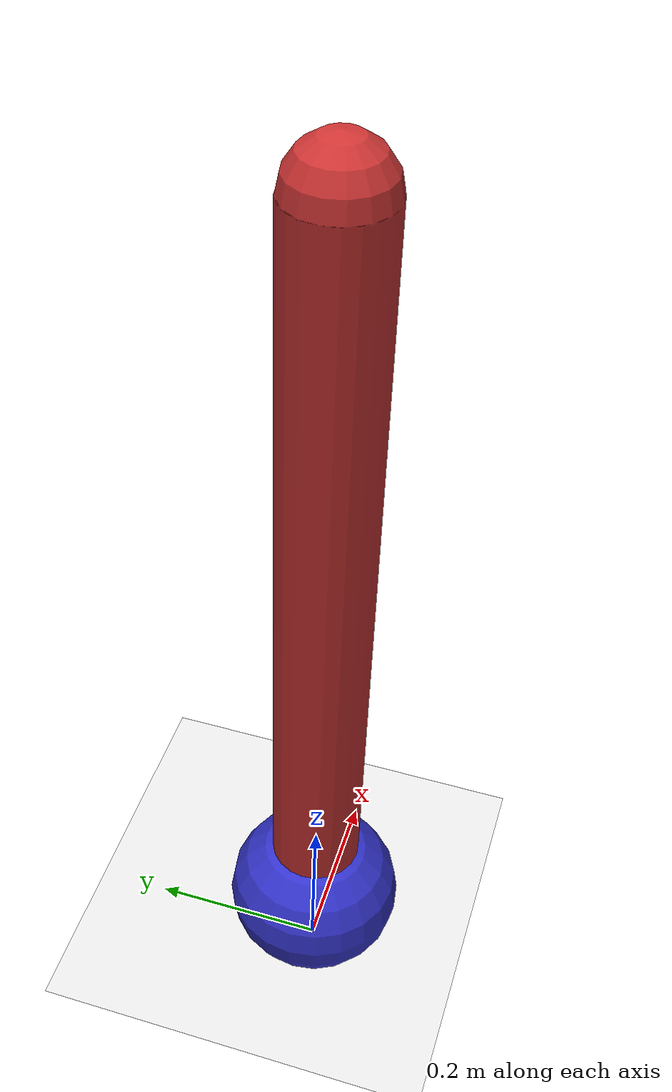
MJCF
<mujoco model="pendulum">
  <worldbody>
    <light pos="0 0 2"/>
    <geom name="floor" type="plane" size="1 1 0.1" rgba=".9 .9 .9 1"/>
    <body name="pole" pos="0 0 1">
      <joint name="hinge" type="hinge" axis="0 1 0"/>
      <geom type="capsule" size="0.05" fromto="0 0 0  0 0 -0.9" rgba="0.8 0.2 0.2 1"/>
      <body name="bob" pos="0 0 -0.9">
        <geom type="sphere" size="0.1" rgba="0.2 0.2 0.8 1"/>
      </body>
    </body>
  </worldbody>
</mujoco>
